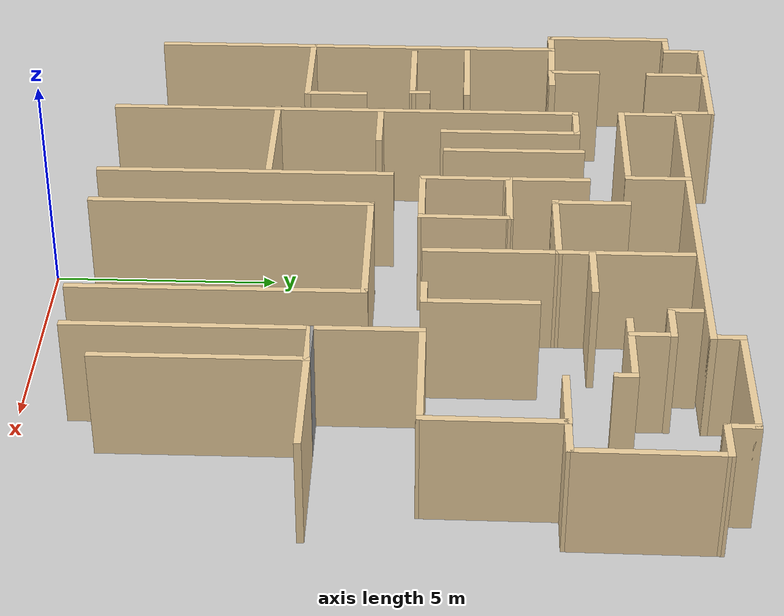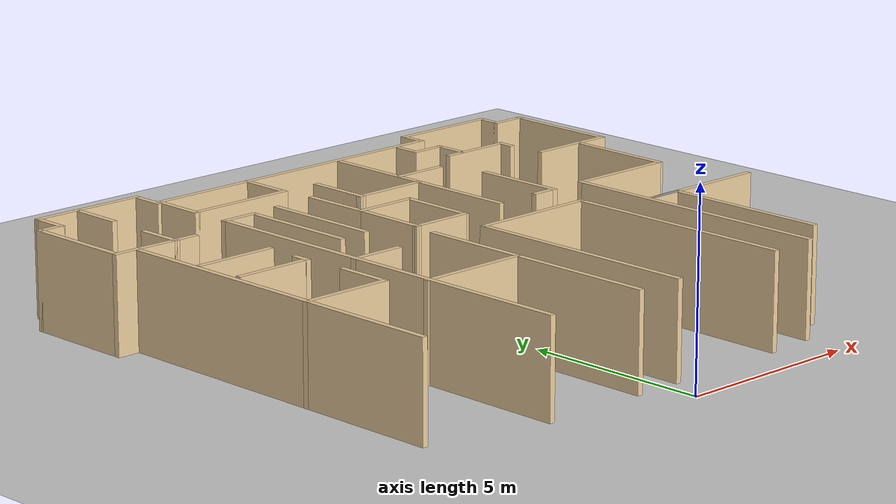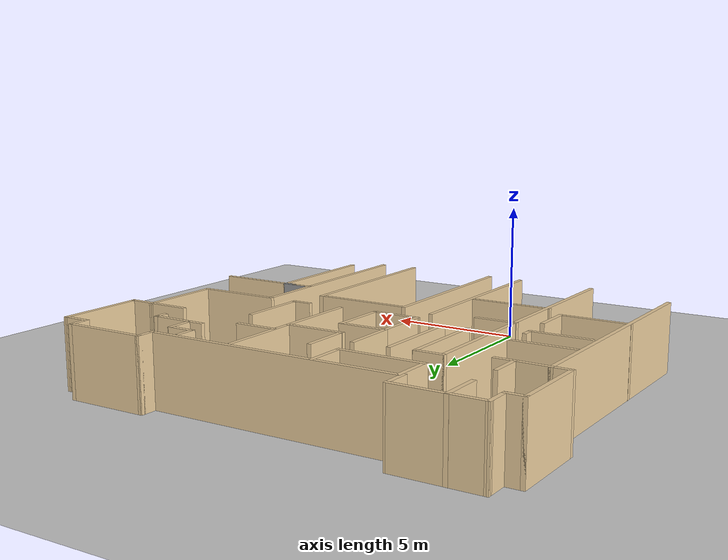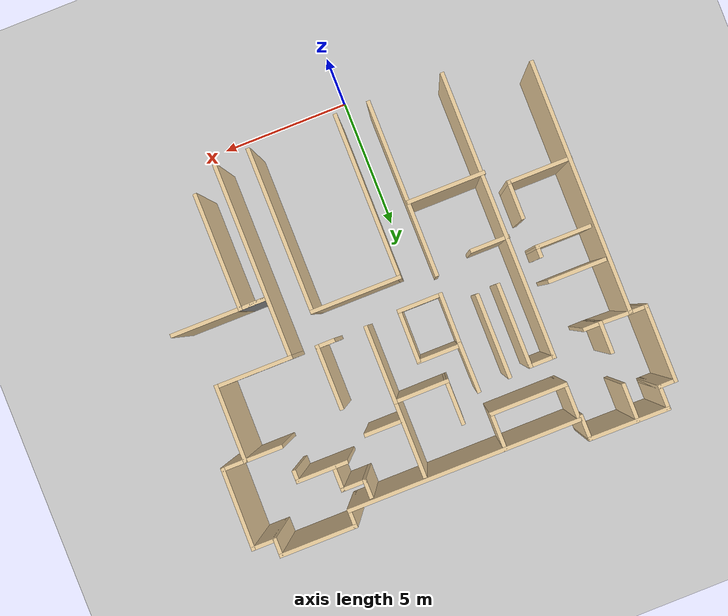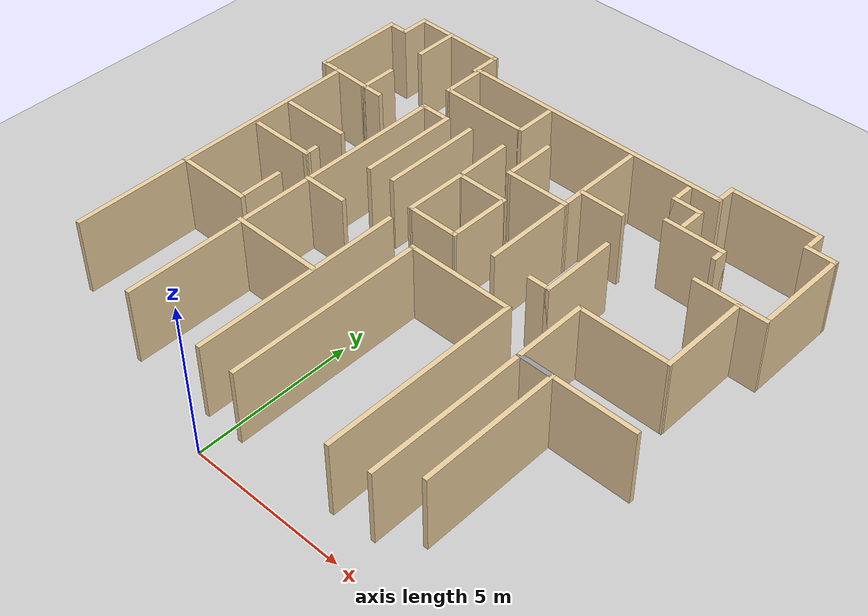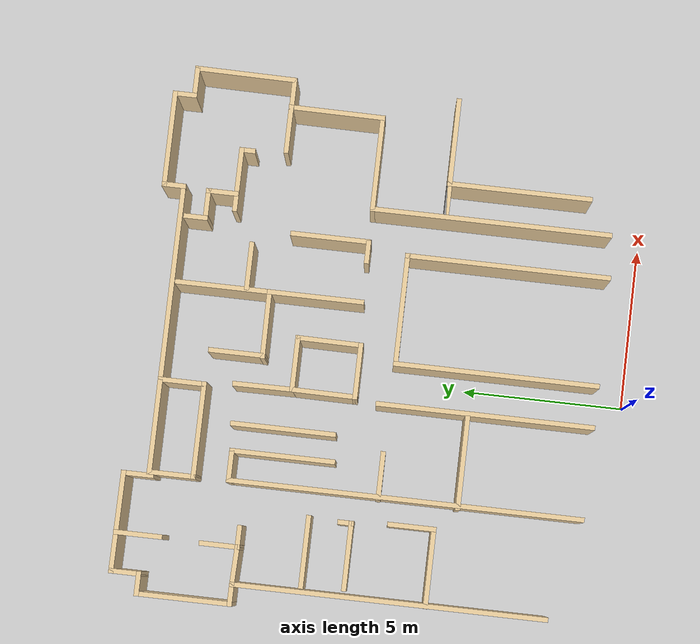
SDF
<sdf version="1.6">
 <world name="default">
  <model name="ground_plane">
   <static>1</static>
   <link name="link">
    <collision name="collision">
     <geometry><plane><normal>0 0 1</normal><size>100 100</size></plane></geometry>
     <surface><friction><ode><mu>100</mu><mu2>50</mu2></ode></friction></surface>
    </collision>
    <visual name="visual">
     <cast_shadows>0</cast_shadows>
     <geometry><plane><normal>0 0 1</normal><size>100 100</size></plane></geometry>
     <material>
      <script><uri>file://media/materials/scripts/gazebo.material</uri><name>Gazebo/Grey</name></script>
     </material>
    </visual>
   </link>
  </model>
  <model name="ASTI_Floor_plan">
   <pose>0.499295 4.1368 0 0 -0 0</pose>
   <link name="Wall_0">
    <collision name="Wall_0_Collision">
     <geometry><box><size>3.5 0.15 2.5</size></box></geometry>
     <pose>0 0 1.25 0 -0 0</pose>
    </collision>
    <visual name="Wall_0_Visual">
     <pose>0 0 1.25 0 -0 0</pose>
     <geometry><box><size>3.5 0.15 2.5</size></box></geometry>
     <material>
      <script><uri>file://media/materials/scripts/gazebo.material</uri><name>Gazebo/Grey</name></script>
      <ambient>0.921569 0.807843 0.615686 1</ambient>
     </material>
    </visual>
    <pose>1.63239 3.09807 0 0 -0 0</pose>
   </link>
   <link name="Wall_1">
    <collision name="Wall_1_Collision">
     <geometry><box><size>6.36204 0.15 2.5</size></box></geometry>
     <pose>0 0 1.25 0 -0 0</pose>
    </collision>
    <visual name="Wall_1_Visual">
     <pose>0 0 1.25 0 -0 0</pose>
     <geometry><box><size>6.36204 0.15 2.5</size></box></geometry>
     <material>
      <script><uri>file://media/materials/scripts/gazebo.material</uri><name>Gazebo/Grey</name></script>
      <ambient>0.921569 0.807843 0.615686 1</ambient>
     </material>
    </visual>
    <pose>3.30739 -0.007754 0 0 0 -1.5708</pose>
   </link>
   <link name="Wall_100">
    <collision name="Wall_100_Collision">
     <geometry><box><size>9.75 0.15 2.5</size></box></geometry>
     <pose>0 0 1.25 0 -0 0</pose>
    </collision>
    <visual name="Wall_100_Visual">
     <pose>0 0 1.25 0 -0 0</pose>
     <geometry><box><size>9.75 0.15 2.5</size></box></geometry>
     <material>
      <script><uri>file://media/materials/scripts/gazebo.material</uri><name>Gazebo/Grey</name></script>
      <ambient>0.921569 0.807843 0.615686 1</ambient>
     </material>
    </visual>
    <pose>-7.28175 2.5015 0 0 -0 1.5708</pose>
   </link>
   <link name="Wall_101">
    <collision name="Wall_101_Collision">
     <geometry><box><size>0.75 0.15 2.5</size></box></geometry>
     <pose>0 0 1.25 0 -0 0</pose>
    </collision>
    <visual name="Wall_101_Visual">
     <pose>0 0 1.25 0 -0 0</pose>
     <geometry><box><size>0.75 0.15 2.5</size></box></geometry>
     <material>
      <script><uri>file://media/materials/scripts/gazebo.material</uri><name>Gazebo/Grey</name></script>
      <ambient>0.921569 0.807843 0.615686 1</ambient>
     </material>
    </visual>
    <pose>-7.58175 7.3015 0 0 -0 3.14159</pose>
   </link>
   <link name="Wall_102">
    <collision name="Wall_102_Collision">
     <geometry><box><size>3 0.15 2.5</size></box></geometry>
     <pose>0 0 1.25 0 -0 0</pose>
    </collision>
    <visual name="Wall_102_Visual">
     <pose>0 0 1.25 0 -0 0</pose>
     <geometry><box><size>3 0.15 2.5</size></box></geometry>
     <material>
      <script><uri>file://media/materials/scripts/gazebo.material</uri><name>Gazebo/Grey</name></script>
      <ambient>0.921569 0.807843 0.615686 1</ambient>
     </material>
    </visual>
    <pose>-7.88175 8.7265 0 0 -0 1.5708</pose>
   </link>
   <link name="Wall_103">
    <collision name="Wall_103_Collision">
     <geometry><box><size>0.75 0.15 2.5</size></box></geometry>
     <pose>0 0 1.25 0 -0 0</pose>
    </collision>
    <visual name="Wall_103_Visual">
     <pose>0 0 1.25 0 -0 0</pose>
     <geometry><box><size>0.75 0.15 2.5</size></box></geometry>
     <material>
      <script><uri>file://media/materials/scripts/gazebo.material</uri><name>Gazebo/Grey</name></script>
      <ambient>0.921569 0.807843 0.615686 1</ambient>
     </material>
    </visual>
    <pose>-7.58175 10.1515 0 0 -0 0</pose>
   </link>
   <link name="Wall_104">
    <collision name="Wall_104_Collision">
     <geometry><box><size>1 0.15 2.5</size></box></geometry>
     <pose>0 0 1.25 0 -0 0</pose>
    </collision>
    <visual name="Wall_104_Visual">
     <pose>0 0 1.25 0 -0 0</pose>
     <geometry><box><size>1 0.15 2.5</size></box></geometry>
     <material>
      <script><uri>file://media/materials/scripts/gazebo.material</uri><name>Gazebo/Grey</name></script>
      <ambient>0.921569 0.807843 0.615686 1</ambient>
     </material>
    </visual>
    <pose>-7.28175 10.5765 0 0 -0 1.5708</pose>
   </link>
   <link name="Wall_105">
    <collision name="Wall_105_Collision">
     <geometry><box><size>3.15536 0.15 2.5</size></box></geometry>
     <pose>0 0 1.25 0 -0 0</pose>
    </collision>
    <visual name="Wall_105_Visual">
     <pose>0 0 1.25 0 -0 0</pose>
     <geometry><box><size>3.15536 0.15 2.5</size></box></geometry>
     <material>
      <script><uri>file://media/materials/scripts/gazebo.material</uri><name>Gazebo/Grey</name></script>
      <ambient>0.921569 0.807843 0.615686 1</ambient>
     </material>
    </visual>
    <pose>-5.77911 10.9913 0 0 0 -0.006803</pose>
   </link>
   <link name="Wall_106">
    <collision name="Wall_106_Collision">
     <geometry><box><size>1 0.15 2.5</size></box></geometry>
     <pose>0 0 1.25 0 -0 0</pose>
    </collision>
    <visual name="Wall_106_Visual">
     <pose>0 0 1.25 0 -0 0</pose>
     <geometry><box><size>1 0.15 2.5</size></box></geometry>
     <material>
      <script><uri>file://media/materials/scripts/gazebo.material</uri><name>Gazebo/Grey</name></script>
      <ambient>0.921569 0.807843 0.615686 1</ambient>
     </material>
    </visual>
    <pose>-4.27646 10.5561 0 0 0 -1.5708</pose>
   </link>
   <link name="Wall_109">
    <collision name="Wall_109_Collision">
     <geometry><box><size>0.75 0.15 2.5</size></box></geometry>
     <pose>0 0 1.25 0 -0 0</pose>
    </collision>
    <visual name="Wall_109_Visual">
     <pose>0 0 1.25 0 -0 0</pose>
     <geometry><box><size>0.75 0.15 2.5</size></box></geometry>
     <material>
      <script><uri>file://media/materials/scripts/gazebo.material</uri><name>Gazebo/Grey</name></script>
      <ambient>0.921569 0.807843 0.615686 1</ambient>
     </material>
    </visual>
    <pose>4.68096 10.5034 0 0 -0 1.5708</pose>
   </link>
   <link name="Wall_11">
    <collision name="Wall_11_Collision">
     <geometry><box><size>3 0.15 2.5</size></box></geometry>
     <pose>0 0 1.25 0 -0 0</pose>
    </collision>
    <visual name="Wall_11_Visual">
     <pose>0 0 1.25 0 -0 0</pose>
     <geometry><box><size>3 0.15 2.5</size></box></geometry>
     <material>
      <script><uri>file://media/materials/scripts/gazebo.material</uri><name>Gazebo/Grey</name></script>
      <ambient>0.921569 0.807843 0.615686 1</ambient>
     </material>
    </visual>
    <pose>-2.78222 0.721913 0 0 -0 3.14159</pose>
   </link>
   <link name="Wall_110">
    <collision name="Wall_110_Collision">
     <geometry><box><size>3 0.15 2.5</size></box></geometry>
     <pose>0 0 1.25 0 -0 0</pose>
    </collision>
    <visual name="Wall_110_Visual">
     <pose>0 0 1.25 0 -0 0</pose>
     <geometry><box><size>3 0.15 2.5</size></box></geometry>
     <material>
      <script><uri>file://media/materials/scripts/gazebo.material</uri><name>Gazebo/Grey</name></script>
      <ambient>0.921569 0.807843 0.615686 1</ambient>
     </material>
    </visual>
    <pose>6.10596 10.8034 0 0 -0 0</pose>
   </link>
   <link name="Wall_111">
    <collision name="Wall_111_Collision">
     <geometry><box><size>0.75 0.15 2.5</size></box></geometry>
     <pose>0 0 1.25 0 -0 0</pose>
    </collision>
    <visual name="Wall_111_Visual">
     <pose>0 0 1.25 0 -0 0</pose>
     <geometry><box><size>0.75 0.15 2.5</size></box></geometry>
     <material>
      <script><uri>file://media/materials/scripts/gazebo.material</uri><name>Gazebo/Grey</name></script>
      <ambient>0.921569 0.807843 0.615686 1</ambient>
     </material>
    </visual>
    <pose>7.53096 10.5034 0 0 0 -1.5708</pose>
   </link>
   <link name="Wall_115">
    <collision name="Wall_115_Collision">
     <geometry><box><size>1 0.15 2.5</size></box></geometry>
     <pose>0 0 1.25 0 -0 0</pose>
    </collision>
    <visual name="Wall_115_Visual">
     <pose>0 0 1.25 0 -0 0</pose>
     <geometry><box><size>1 0.15 2.5</size></box></geometry>
     <material>
      <script><uri>file://media/materials/scripts/gazebo.material</uri><name>Gazebo/Grey</name></script>
      <ambient>0.921569 0.807843 0.615686 1</ambient>
     </material>
    </visual>
    <pose>7.92389 7.17644 0 0 -0 0</pose>
   </link>
   <link name="Wall_117">
    <collision name="Wall_117_Collision">
     <geometry><box><size>1 0.15 2.5</size></box></geometry>
     <pose>0 0 1.25 0 -0 0</pose>
    </collision>
    <visual name="Wall_117_Visual">
     <pose>0 0 1.25 0 -0 0</pose>
     <geometry><box><size>1 0.15 2.5</size></box></geometry>
     <material>
      <script><uri>file://media/materials/scripts/gazebo.material</uri><name>Gazebo/Grey</name></script>
      <ambient>0.921569 0.807843 0.615686 1</ambient>
     </material>
    </visual>
    <pose>7.95596 10.2034 0 0 -0 0</pose>
   </link>
   <link name="Wall_118">
    <collision name="Wall_118_Collision">
     <geometry><box><size>3.16721 0.15 2.5</size></box></geometry>
     <pose>0 0 1.25 0 -0 0</pose>
    </collision>
    <visual name="Wall_118_Visual">
     <pose>0 0 1.25 0 -0 0</pose>
     <geometry><box><size>3.16721 0.15 2.5</size></box></geometry>
     <material>
      <script><uri>file://media/materials/scripts/gazebo.material</uri><name>Gazebo/Grey</name></script>
      <ambient>0.921569 0.807843 0.615686 1</ambient>
     </material>
    </visual>
    <pose>8.36492 8.69485 0 0 0 -1.58143</pose>
   </link>
   <link name="Wall_120">
    <collision name="Wall_120_Collision">
     <geometry><box><size>3 0.15 2.5</size></box></geometry>
     <pose>0 0 1.25 0 -0 0</pose>
    </collision>
    <visual name="Wall_120_Visual">
     <pose>0 0 1.25 0 -0 0</pose>
     <geometry><box><size>3 0.15 2.5</size></box></geometry>
     <material>
      <script><uri>file://media/materials/scripts/gazebo.material</uri><name>Gazebo/Grey</name></script>
      <ambient>0.921569 0.807843 0.615686 1</ambient>
     </material>
    </visual>
    <pose>1.72424 5.76746 0 0 0 -1.5708</pose>
   </link>
   <link name="Wall_122">
    <collision name="Wall_122_Collision">
     <geometry><box><size>0.75 0.15 2.5</size></box></geometry>
     <pose>0 0 1.25 0 -0 0</pose>
    </collision>
    <visual name="Wall_122_Visual">
     <pose>0 0 1.25 0 -0 0</pose>
     <geometry><box><size>0.75 0.15 2.5</size></box></geometry>
     <material>
      <script><uri>file://media/materials/scripts/gazebo.material</uri><name>Gazebo/Grey</name></script>
      <ambient>0.921569 0.807843 0.615686 1</ambient>
     </material>
    </visual>
    <pose>3.29863 4.33598 0 0 -0 0</pose>
   </link>
   <link name="Wall_123">
    <collision name="Wall_123_Collision">
     <geometry><box><size>2.5 0.15 2.5</size></box></geometry>
     <pose>0 0 1.25 0 -0 0</pose>
    </collision>
    <visual name="Wall_123_Visual">
     <pose>0 0 1.25 0 -0 0</pose>
     <geometry><box><size>2.5 0.15 2.5</size></box></geometry>
     <material>
      <script><uri>file://media/materials/scripts/gazebo.material</uri><name>Gazebo/Grey</name></script>
      <ambient>0.921569 0.807843 0.615686 1</ambient>
     </material>
    </visual>
    <pose>3.59863 5.51098 0 0 -0 1.5708</pose>
   </link>
   <link name="Wall_13">
    <collision name="Wall_13_Collision">
     <geometry><box><size>1.5 0.15 2.5</size></box></geometry>
     <pose>0 0 1.25 0 -0 0</pose>
    </collision>
    <visual name="Wall_13_Visual">
     <pose>0 0 1.25 0 -0 0</pose>
     <geometry><box><size>1.5 0.15 2.5</size></box></geometry>
     <material>
      <script><uri>file://media/materials/scripts/gazebo.material</uri><name>Gazebo/Grey</name></script>
      <ambient>0.921569 0.807843 0.615686 1</ambient>
     </material>
    </visual>
    <pose>-3.50184 3.16913 0 0 -0 0</pose>
   </link>
   <link name="Wall_15">
    <collision name="Wall_15_Collision">
     <geometry><box><size>1.04066 0.15 2.5</size></box></geometry>
     <pose>0 0 1.25 0 -0 0</pose>
    </collision>
    <visual name="Wall_15_Visual">
     <pose>0 0 1.25 0 -0 0</pose>
     <geometry><box><size>1.04066 0.15 2.5</size></box></geometry>
     <material>
      <script><uri>file://media/materials/scripts/gazebo.material</uri><name>Gazebo/Grey</name></script>
      <ambient>0.921569 0.807843 0.615686 1</ambient>
     </material>
    </visual>
    <pose>-3.70491 7.77097 0 0 -0 0</pose>
   </link>
   <link name="Wall_16">
    <collision name="Wall_16_Collision">
     <geometry><box><size>3.25 0.15 2.5</size></box></geometry>
     <pose>0 0 1.25 0 -0 0</pose>
    </collision>
    <visual name="Wall_16_Visual">
     <pose>0 0 1.25 0 -0 0</pose>
     <geometry><box><size>3.25 0.15 2.5</size></box></geometry>
     <material>
      <script><uri>file://media/materials/scripts/gazebo.material</uri><name>Gazebo/Grey</name></script>
      <ambient>0.921569 0.807843 0.615686 1</ambient>
     </material>
    </visual>
    <pose>-3.24463 6.22097 0 0 0 -1.5708</pose>
   </link>
   <link name="Wall_18">
    <collision name="Wall_18_Collision">
     <geometry><box><size>3.25 0.15 2.5</size></box></geometry>
     <pose>0 0 1.25 0 -0 0</pose>
    </collision>
    <visual name="Wall_18_Visual">
     <pose>0 0 1.25 0 -0 0</pose>
     <geometry><box><size>3.25 0.15 2.5</size></box></geometry>
     <material>
      <script><uri>file://media/materials/scripts/gazebo.material</uri><name>Gazebo/Grey</name></script>
      <ambient>0.921569 0.807843 0.615686 1</ambient>
     </material>
    </visual>
    <pose>-2.41289 6.29416 0 0 0 -1.5708</pose>
   </link>
   <link name="Wall_181">
    <collision name="Wall_181_Collision">
     <geometry><box><size>1.5 0.15 2.5</size></box></geometry>
     <pose>0 0 1.25 0 -0 0</pose>
    </collision>
    <visual name="Wall_181_Visual">
     <pose>0 0 1.25 0 -0 0</pose>
     <geometry><box><size>1.5 0.15 2.5</size></box></geometry>
     <material>
      <script><uri>file://media/materials/scripts/gazebo.material</uri><name>Gazebo/Grey</name></script>
      <ambient>0.921569 0.807843 0.615686 1</ambient>
     </material>
    </visual>
    <pose>-4.93985 2.0518 0 0 0 -1.5708</pose>
   </link>
   <link name="Wall_184">
    <collision name="Wall_184_Collision">
     <geometry><box><size>1.5 0.15 2.5</size></box></geometry>
     <pose>0 0 1.25 0 -0 0</pose>
    </collision>
    <visual name="Wall_184_Visual">
     <pose>0 0 1.25 0 -0 0</pose>
     <geometry><box><size>1.5 0.15 2.5</size></box></geometry>
     <material>
      <script><uri>file://media/materials/scripts/gazebo.material</uri><name>Gazebo/Grey</name></script>
      <ambient>0.921569 0.807843 0.615686 1</ambient>
     </material>
    </visual>
    <pose>-6.09951 10.3225 0 0 0 -1.5708</pose>
   </link>
   <link name="Wall_186">
    <collision name="Wall_186_Collision">
     <geometry><box><size>1.25 0.15 2.5</size></box></geometry>
     <pose>0 0 1.25 0 -0 0</pose>
    </collision>
    <visual name="Wall_186_Visual">
     <pose>0 0 1.25 0 -0 0</pose>
     <geometry><box><size>1.25 0.15 2.5</size></box></geometry>
     <material>
      <script><uri>file://media/materials/scripts/gazebo.material</uri><name>Gazebo/Grey</name></script>
      <ambient>0.921569 0.807843 0.615686 1</ambient>
     </material>
    </visual>
    <pose>-6.14437 7.81586 0 0 0 -1.5708</pose>
   </link>
   <link name="Wall_187">
    <collision name="Wall_187_Collision">
     <geometry><box><size>1.28794 0.15 2.5</size></box></geometry>
     <pose>0 0 1.25 0 -0 0</pose>
    </collision>
    <visual name="Wall_187_Visual">
     <pose>0 0 1.25 0 -0 0</pose>
     <geometry><box><size>1.28794 0.15 2.5</size></box></geometry>
     <material>
      <script><uri>file://media/materials/scripts/gazebo.material</uri><name>Gazebo/Grey</name></script>
      <ambient>0.921569 0.807843 0.615686 1</ambient>
     </material>
    </visual>
    <pose>-6.71306 7.28368 0 0 -0 3.11027</pose>
   </link>
   <link name="Wall_189">
    <collision name="Wall_189_Collision">
     <geometry><box><size>0.75 0.15 2.5</size></box></geometry>
     <pose>0 0 1.25 0 -0 0</pose>
    </collision>
    <visual name="Wall_189_Visual">
     <pose>0 0 1.25 0 -0 0</pose>
     <geometry><box><size>0.75 0.15 2.5</size></box></geometry>
     <material>
      <script><uri>file://media/materials/scripts/gazebo.material</uri><name>Gazebo/Grey</name></script>
      <ambient>0.921569 0.807843 0.615686 1</ambient>
     </material>
    </visual>
    <pose>-5.84437 7.26586 0 0 -0 0</pose>
   </link>
   <link name="Wall_25">
    <collision name="Wall_25_Collision">
     <geometry><box><size>1.95283 0.15 2.5</size></box></geometry>
     <pose>0 0 1.25 0 -0 0</pose>
    </collision>
    <visual name="Wall_25_Visual">
     <pose>0 0 1.25 0 -0 0</pose>
     <geometry><box><size>1.95283 0.15 2.5</size></box></geometry>
     <material>
      <script><uri>file://media/materials/scripts/gazebo.material</uri><name>Gazebo/Grey</name></script>
      <ambient>0.921569 0.807843 0.615686 1</ambient>
     </material>
    </visual>
    <pose>-1.19089 7.01799 0 0 0 -1.5625</pose>
   </link>
   <link name="Wall_28">
    <collision name="Wall_28_Collision">
     <geometry><box><size>2.04729 0.15 2.5</size></box></geometry>
     <pose>0 0 1.25 0 -0 0</pose>
    </collision>
    <visual name="Wall_28_Visual">
     <pose>0 0 1.25 0 -0 0</pose>
     <geometry><box><size>2.04729 0.15 2.5</size></box></geometry>
     <material>
      <script><uri>file://media/materials/scripts/gazebo.material</uri><name>Gazebo/Grey</name></script>
      <ambient>0.921569 0.807843 0.615686 1</ambient>
     </material>
    </visual>
    <pose>-1.19089 5.168 0 0 0 -1.57868</pose>
   </link>
   <link name="Wall_29">
    <collision name="Wall_29_Collision">
     <geometry><box><size>1.75 0.15 2.5</size></box></geometry>
     <pose>0 0 1.25 0 -0 0</pose>
    </collision>
    <visual name="Wall_29_Visual">
     <pose>0 0 1.25 0 -0 0</pose>
     <geometry><box><size>1.75 0.15 2.5</size></box></geometry>
     <material>
      <script><uri>file://media/materials/scripts/gazebo.material</uri><name>Gazebo/Grey</name></script>
      <ambient>0.921569 0.807843 0.615686 1</ambient>
     </material>
    </visual>
    <pose>-0.398371 4.21938 0 0 -0 0</pose>
   </link>
   <link name="Wall_3">
    <collision name="Wall_3_Collision">
     <geometry><box><size>6.36204 0.15 2.5</size></box></geometry>
     <pose>0 0 1.25 0 -0 0</pose>
    </collision>
    <visual name="Wall_3_Visual">
     <pose>0 0 1.25 0 -0 0</pose>
     <geometry><box><size>6.36204 0.15 2.5</size></box></geometry>
     <material>
      <script><uri>file://media/materials/scripts/gazebo.material</uri><name>Gazebo/Grey</name></script>
      <ambient>0.921569 0.807843 0.615686 1</ambient>
     </material>
    </visual>
    <pose>-0.04261 -0.007754 0 0 -0 1.5708</pose>
   </link>
   <link name="Wall_30">
    <collision name="Wall_30_Collision">
     <geometry><box><size>2.04729 0.15 2.5</size></box></geometry>
     <pose>0 0 1.25 0 -0 0</pose>
    </collision>
    <visual name="Wall_30_Visual">
     <pose>0 0 1.25 0 -0 0</pose>
     <geometry><box><size>2.04729 0.15 2.5</size></box></geometry>
     <material>
      <script><uri>file://media/materials/scripts/gazebo.material</uri><name>Gazebo/Grey</name></script>
      <ambient>0.921569 0.807843 0.615686 1</ambient>
     </material>
    </visual>
    <pose>0.409106 5.168 0 0 -0 1.56292</pose>
   </link>
   <link name="Wall_31">
    <collision name="Wall_31_Collision">
     <geometry><box><size>1.75 0.15 2.5</size></box></geometry>
     <pose>0 0 1.25 0 -0 0</pose>
    </collision>
    <visual name="Wall_31_Visual">
     <pose>0 0 1.25 0 -0 0</pose>
     <geometry><box><size>1.75 0.15 2.5</size></box></geometry>
     <material>
      <script><uri>file://media/materials/scripts/gazebo.material</uri><name>Gazebo/Grey</name></script>
      <ambient>0.921569 0.807843 0.615686 1</ambient>
     </material>
    </visual>
    <pose>-0.383418 6.16147 0 0 -0 3.14159</pose>
   </link>
   <link name="Wall_33">
    <collision name="Wall_33_Collision">
     <geometry><box><size>9 0.15 2.5</size></box></geometry>
     <pose>0 0 1.25 0 -0 0</pose>
    </collision>
    <visual name="Wall_33_Visual">
     <pose>0 0 1.25 0 -0 0</pose>
     <geometry><box><size>9 0.15 2.5</size></box></geometry>
     <material>
      <script><uri>file://media/materials/scripts/gazebo.material</uri><name>Gazebo/Grey</name></script>
      <ambient>0.921569 0.807843 0.615686 1</ambient>
     </material>
    </visual>
    <pose>0.255961 10.2034 0 0 -0 0</pose>
   </link>
   <link name="Wall_35">
    <collision name="Wall_35_Collision">
     <geometry><box><size>1.5 0.15 2.5</size></box></geometry>
     <pose>0 0 1.25 0 -0 0</pose>
    </collision>
    <visual name="Wall_35_Visual">
     <pose>0 0 1.25 0 -0 0</pose>
     <geometry><box><size>1.5 0.15 2.5</size></box></geometry>
     <material>
      <script><uri>file://media/materials/scripts/gazebo.material</uri><name>Gazebo/Grey</name></script>
      <ambient>0.921569 0.807843 0.615686 1</ambient>
     </material>
    </visual>
    <pose>-4.16904 9.52837 0 0 0 -1.5708</pose>
   </link>
   <link name="Wall_36">
    <collision name="Wall_36_Collision">
     <geometry><box><size>3 0.15 2.5</size></box></geometry>
     <pose>0 0 1.25 0 -0 0</pose>
    </collision>
    <visual name="Wall_36_Visual">
     <pose>0 0 1.25 0 -0 0</pose>
     <geometry><box><size>3 0.15 2.5</size></box></geometry>
     <material>
      <script><uri>file://media/materials/scripts/gazebo.material</uri><name>Gazebo/Grey</name></script>
      <ambient>0.921569 0.807843 0.615686 1</ambient>
     </material>
    </visual>
    <pose>-2.74404 8.85337 0 0 -0 0</pose>
   </link>
   <link name="Wall_37">
    <collision name="Wall_37_Collision">
     <geometry><box><size>1.5 0.15 2.5</size></box></geometry>
     <pose>0 0 1.25 0 -0 0</pose>
    </collision>
    <visual name="Wall_37_Visual">
     <pose>0 0 1.25 0 -0 0</pose>
     <geometry><box><size>1.5 0.15 2.5</size></box></geometry>
     <material>
      <script><uri>file://media/materials/scripts/gazebo.material</uri><name>Gazebo/Grey</name></script>
      <ambient>0.921569 0.807843 0.615686 1</ambient>
     </material>
    </visual>
    <pose>-1.31904 9.52837 0 0 -0 1.5708</pose>
   </link>
   <link name="Wall_39">
    <collision name="Wall_39_Collision">
     <geometry><box><size>3 0.15 2.5</size></box></geometry>
     <pose>0 0 1.25 0 -0 0</pose>
    </collision>
    <visual name="Wall_39_Visual">
     <pose>0 0 1.25 0 -0 0</pose>
     <geometry><box><size>3 0.15 2.5</size></box></geometry>
     <material>
      <script><uri>file://media/materials/scripts/gazebo.material</uri><name>Gazebo/Grey</name></script>
      <ambient>0.921569 0.807843 0.615686 1</ambient>
     </material>
    </visual>
    <pose>1.72424 8.61746 0 0 0 -1.5708</pose>
   </link>
   <link name="Wall_40">
    <collision name="Wall_40_Collision">
     <geometry><box><size>2.14119 0.15 2.5</size></box></geometry>
     <pose>0 0 1.25 0 -0 0</pose>
    </collision>
    <visual name="Wall_40_Visual">
     <pose>0 0 1.25 0 -0 0</pose>
     <geometry><box><size>2.14119 0.15 2.5</size></box></geometry>
     <material>
      <script><uri>file://media/materials/scripts/gazebo.material</uri><name>Gazebo/Grey</name></script>
      <ambient>0.921569 0.807843 0.615686 1</ambient>
     </material>
    </visual>
    <pose>0.728668 7.18498 0 0 0 -3.13408</pose>
   </link>
   <link name="Wall_41">
    <collision name="Wall_41_Collision">
     <geometry><box><size>1.75 0.15 2.5</size></box></geometry>
     <pose>0 0 1.25 0 -0 0</pose>
    </collision>
    <visual name="Wall_41_Visual">
     <pose>0 0 1.25 0 -0 0</pose>
     <geometry><box><size>1.75 0.15 2.5</size></box></geometry>
     <material>
      <script><uri>file://media/materials/scripts/gazebo.material</uri><name>Gazebo/Grey</name></script>
      <ambient>0.921569 0.807843 0.615686 1</ambient>
     </material>
    </visual>
    <pose>-0.251948 7.9775 0 0 -0 1.5708</pose>
   </link>
   <link name="Wall_43">
    <collision name="Wall_43_Collision">
     <geometry><box><size>1.5 0.15 2.5</size></box></geometry>
     <pose>0 0 1.25 0 -0 0</pose>
    </collision>
    <visual name="Wall_43_Visual">
     <pose>0 0 1.25 0 -0 0</pose>
     <geometry><box><size>1.5 0.15 2.5</size></box></geometry>
     <material>
      <script><uri>file://media/materials/scripts/gazebo.material</uri><name>Gazebo/Grey</name></script>
      <ambient>0.921569 0.807843 0.615686 1</ambient>
     </material>
    </visual>
    <pose>2.44979 7.90526 0 0 -0 0</pose>
   </link>
   <link name="Wall_45">
    <collision name="Wall_45_Collision">
     <geometry><box><size>0.75 0.15 2.5</size></box></geometry>
     <pose>0 0 1.25 0 -0 0</pose>
    </collision>
    <visual name="Wall_45_Visual">
     <pose>0 0 1.25 0 -0 0</pose>
     <geometry><box><size>0.75 0.15 2.5</size></box></geometry>
     <material>
      <script><uri>file://media/materials/scripts/gazebo.material</uri><name>Gazebo/Grey</name></script>
      <ambient>0.921569 0.807843 0.615686 1</ambient>
     </material>
    </visual>
    <pose>3.77582 9.72234 0 0 0 -1.5708</pose>
   </link>
   <link name="Wall_46">
    <collision name="Wall_46_Collision">
     <geometry><box><size>1 0.15 2.5</size></box></geometry>
     <pose>0 0 1.25 0 -0 0</pose>
    </collision>
    <visual name="Wall_46_Visual">
     <pose>0 0 1.25 0 -0 0</pose>
     <geometry><box><size>1 0.15 2.5</size></box></geometry>
     <material>
      <script><uri>file://media/materials/scripts/gazebo.material</uri><name>Gazebo/Grey</name></script>
      <ambient>0.921569 0.807843 0.615686 1</ambient>
     </material>
    </visual>
    <pose>4.20082 9.42234 0 0 -0 0</pose>
   </link>
   <link name="Wall_47">
    <collision name="Wall_47_Collision">
     <geometry><box><size>1 0.15 2.5</size></box></geometry>
     <pose>0 0 1.25 0 -0 0</pose>
    </collision>
    <visual name="Wall_47_Visual">
     <pose>0 0 1.25 0 -0 0</pose>
     <geometry><box><size>1 0.15 2.5</size></box></geometry>
     <material>
      <script><uri>file://media/materials/scripts/gazebo.material</uri><name>Gazebo/Grey</name></script>
      <ambient>0.921569 0.807843 0.615686 1</ambient>
     </material>
    </visual>
    <pose>4.62582 8.99734 0 0 0 -1.5708</pose>
   </link>
   <link name="Wall_49">
    <collision name="Wall_49_Collision">
     <geometry><box><size>2 0.15 2.5</size></box></geometry>
     <pose>0 0 1.25 0 -0 0</pose>
    </collision>
    <visual name="Wall_49_Visual">
     <pose>0 0 1.25 0 -0 0</pose>
     <geometry><box><size>2 0.15 2.5</size></box></geometry>
     <material>
      <script><uri>file://media/materials/scripts/gazebo.material</uri><name>Gazebo/Grey</name></script>
      <ambient>0.921569 0.807843 0.615686 1</ambient>
     </material>
    </visual>
    <pose>5.08014 8.55405 0 0 -0 0</pose>
   </link>
   <link name="Wall_5">
    <collision name="Wall_5_Collision">
     <geometry><box><size>11 0.15 2.5</size></box></geometry>
     <pose>0 0 1.25 0 -0 0</pose>
    </collision>
    <visual name="Wall_5_Visual">
     <pose>0 0 1.25 0 -0 0</pose>
     <geometry><box><size>11 0.15 2.5</size></box></geometry>
     <material>
      <script><uri>file://media/materials/scripts/gazebo.material</uri><name>Gazebo/Grey</name></script>
      <ambient>0.921569 0.807843 0.615686 1</ambient>
     </material>
    </visual>
    <pose>-4.15024 2.34597 0 0 0 -1.5708</pose>
   </link>
   <link name="Wall_50">
    <collision name="Wall_50_Collision">
     <geometry><box><size>0.5 0.15 2.5</size></box></geometry>
     <pose>0 0 1.25 0 -0 0</pose>
    </collision>
    <visual name="Wall_50_Visual">
     <pose>0 0 1.25 0 -0 0</pose>
     <geometry><box><size>0.5 0.15 2.5</size></box></geometry>
     <material>
      <script><uri>file://media/materials/scripts/gazebo.material</uri><name>Gazebo/Grey</name></script>
      <ambient>0.921569 0.807843 0.615686 1</ambient>
     </material>
    </visual>
    <pose>6.00514 8.37905 0 0 0 -1.5708</pose>
   </link>
   <link name="Wall_54">
    <collision name="Wall_54_Collision">
     <geometry><box><size>1.51978 0.15 2.5</size></box></geometry>
     <pose>0 0 1.25 0 -0 0</pose>
    </collision>
    <visual name="Wall_54_Visual">
     <pose>0 0 1.25 0 -0 0</pose>
     <geometry><box><size>1.51978 0.15 2.5</size></box></geometry>
     <material>
      <script><uri>file://media/materials/scripts/gazebo.material</uri><name>Gazebo/Grey</name></script>
      <ambient>0.921569 0.807843 0.615686 1</ambient>
     </material>
    </visual>
    <pose>6.814 7.18633 0 0 -0 0</pose>
   </link>
   <link name="Wall_55">
    <collision name="Wall_55_Collision">
     <geometry><box><size>3.00007 0.15 2.5</size></box></geometry>
     <pose>0 0 1.25 0 -0 0</pose>
    </collision>
    <visual name="Wall_55_Visual">
     <pose>0 0 1.25 0 -0 0</pose>
     <geometry><box><size>3.00007 0.15 2.5</size></box></geometry>
     <material>
      <script><uri>file://media/materials/scripts/gazebo.material</uri><name>Gazebo/Grey</name></script>
      <ambient>0.921569 0.807843 0.615686 1</ambient>
     </material>
    </visual>
    <pose>7.489 5.76133 0 0 0 -1.57774</pose>
   </link>
   <link name="Wall_56">
    <collision name="Wall_56_Collision">
     <geometry><box><size>3 0.15 2.5</size></box></geometry>
     <pose>0 0 1.25 0 -0 0</pose>
    </collision>
    <visual name="Wall_56_Visual">
     <pose>0 0 1.25 0 -0 0</pose>
     <geometry><box><size>3 0.15 2.5</size></box></geometry>
     <material>
      <script><uri>file://media/materials/scripts/gazebo.material</uri><name>Gazebo/Grey</name></script>
      <ambient>0.921569 0.807843 0.615686 1</ambient>
     </material>
    </visual>
    <pose>6.05411 4.33633 0 0 -0 3.14159</pose>
   </link>
   <link name="Wall_57">
    <collision name="Wall_57_Collision">
     <geometry><box><size>7.5 0.15 2.5</size></box></geometry>
     <pose>0 0 1.25 0 -0 0</pose>
    </collision>
    <visual name="Wall_57_Visual">
     <pose>0 0 1.25 0 -0 0</pose>
     <geometry><box><size>7.5 0.15 2.5</size></box></geometry>
     <material>
      <script><uri>file://media/materials/scripts/gazebo.material</uri><name>Gazebo/Grey</name></script>
      <ambient>0.921569 0.807843 0.615686 1</ambient>
     </material>
    </visual>
    <pose>4.62911 0.66133 0 0 0 -1.5708</pose>
   </link>
   <link name="Wall_60">
    <collision name="Wall_60_Collision">
     <geometry><box><size>4.5 0.15 2.5</size></box></geometry>
     <pose>0 0 1.25 0 -0 0</pose>
    </collision>
    <visual name="Wall_60_Visual">
     <pose>0 0 1.25 0 -0 0</pose>
     <geometry><box><size>4.5 0.15 2.5</size></box></geometry>
     <material>
      <script><uri>file://media/materials/scripts/gazebo.material</uri><name>Gazebo/Grey</name></script>
      <ambient>0.921569 0.807843 0.615686 1</ambient>
     </material>
    </visual>
    <pose>5.67009 -0.120403 0 0 -0 1.5708</pose>
   </link>
   <link name="Wall_61">
    <collision name="Wall_61_Collision">
     <geometry><box><size>1.1485 0.15 2.5</size></box></geometry>
     <pose>0 0 1.25 0 -0 0</pose>
    </collision>
    <visual name="Wall_61_Visual">
     <pose>0 0 1.25 0 -0 0</pose>
     <geometry><box><size>1.1485 0.15 2.5</size></box></geometry>
     <material>
      <script><uri>file://media/materials/scripts/gazebo.material</uri><name>Gazebo/Grey</name></script>
      <ambient>1 1 1 1</ambient>
     </material>
    </visual>
    <pose>5.14469 2.0546 0 0 -0 3.14159</pose>
   </link>
   <link name="Wall_63">
    <collision name="Wall_63_Collision">
     <geometry><box><size>2.25 0.15 2.5</size></box></geometry>
     <pose>0 0 1.25 0 -0 0</pose>
    </collision>
    <visual name="Wall_63_Visual">
     <pose>0 0 1.25 0 -0 0</pose>
     <geometry><box><size>2.25 0.15 2.5</size></box></geometry>
     <material>
      <script><uri>file://media/materials/scripts/gazebo.material</uri><name>Gazebo/Grey</name></script>
      <ambient>0.921569 0.807843 0.615686 1</ambient>
     </material>
    </visual>
    <pose>-6.05935 5.20826 0 0 -0 0</pose>
   </link>
   <link name="Wall_65">
    <collision name="Wall_65_Collision">
     <geometry><box><size>0.5 0.15 2.5</size></box></geometry>
     <pose>0 0 1.25 0 -0 0</pose>
    </collision>
    <visual name="Wall_65_Visual">
     <pose>0 0 1.25 0 -0 0</pose>
     <geometry><box><size>0.5 0.15 2.5</size></box></geometry>
     <material>
      <script><uri>file://media/materials/scripts/gazebo.material</uri><name>Gazebo/Grey</name></script>
      <ambient>0.921569 0.807843 0.615686 1</ambient>
     </material>
    </visual>
    <pose>-5.03991 4.06776 0 0 0 -1.5708</pose>
   </link>
   <link name="Wall_66">
    <collision name="Wall_66_Collision">
     <geometry><box><size>2.14754 0.15 2.5</size></box></geometry>
     <pose>0 0 1.25 0 -0 0</pose>
    </collision>
    <visual name="Wall_66_Visual">
     <pose>0 0 1.25 0 -0 0</pose>
     <geometry><box><size>2.14754 0.15 2.5</size></box></geometry>
     <material>
      <script><uri>file://media/materials/scripts/gazebo.material</uri><name>Gazebo/Grey</name></script>
      <ambient>0.921569 0.807843 0.615686 1</ambient>
     </material>
    </visual>
    <pose>-6.03867 3.89889 0 0 -0 3.14108</pose>
   </link>
   <link name="Wall_69">
    <collision name="Wall_69_Collision">
     <geometry><box><size>2.5 0.15 2.5</size></box></geometry>
     <pose>0 0 1.25 0 -0 0</pose>
    </collision>
    <visual name="Wall_69_Visual">
     <pose>0 0 1.25 0 -0 0</pose>
     <geometry><box><size>2.5 0.15 2.5</size></box></geometry>
     <material>
      <script><uri>file://media/materials/scripts/gazebo.material</uri><name>Gazebo/Grey</name></script>
      <ambient>0.921569 0.807843 0.615686 1</ambient>
     </material>
    </visual>
    <pose>-6.11485 1.3768 0 0 -0 3.14159</pose>
   </link>
   <link name="Wall_9">
    <collision name="Wall_9_Collision">
     <geometry><box><size>6.75 0.15 2.5</size></box></geometry>
     <pose>0 0 1.25 0 -0 0</pose>
    </collision>
    <visual name="Wall_9_Visual">
     <pose>0 0 1.25 0 -0 0</pose>
     <geometry><box><size>6.75 0.15 2.5</size></box></geometry>
     <material>
      <script><uri>file://media/materials/scripts/gazebo.material</uri><name>Gazebo/Grey</name></script>
      <ambient>0.921569 0.807843 0.615686 1</ambient>
     </material>
    </visual>
    <pose>-1.32123 0.191484 0 0 -0 1.5708</pose>
   </link>
   <link name="Wall_94">
    <collision name="Wall_94_Collision">
     <geometry><box><size>3.77281 0.15 2.5</size></box></geometry>
     <pose>0 0 1.25 0 -0 0</pose>
    </collision>
    <visual name="Wall_94_Visual">
     <pose>0 0 1.25 0 -0 0</pose>
     <geometry><box><size>3.77281 0.15 2.5</size></box></geometry>
     <material>
      <script><uri>file://media/materials/scripts/gazebo.material</uri><name>Gazebo/Grey</name></script>
      <ambient>0.921569 0.807843 0.615686 1</ambient>
     </material>
    </visual>
    <pose>6.45684 2.05305 0 0 -0 3.14074</pose>
   </link>
   <static>1</static>
  </model>
 </world>
</sdf>
